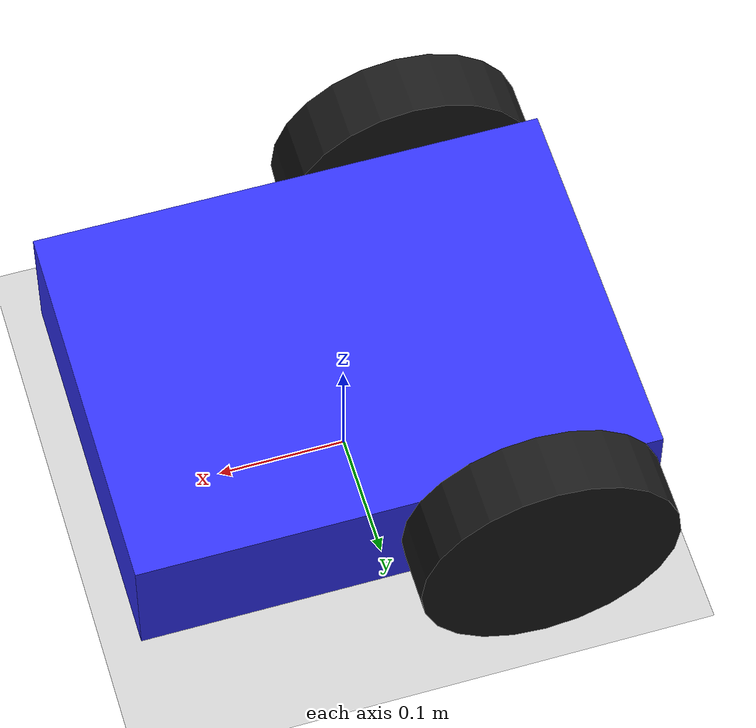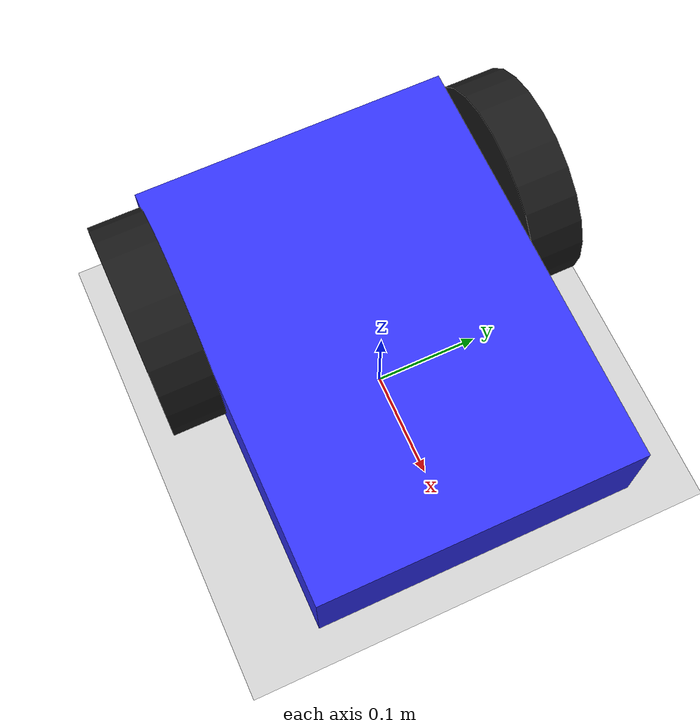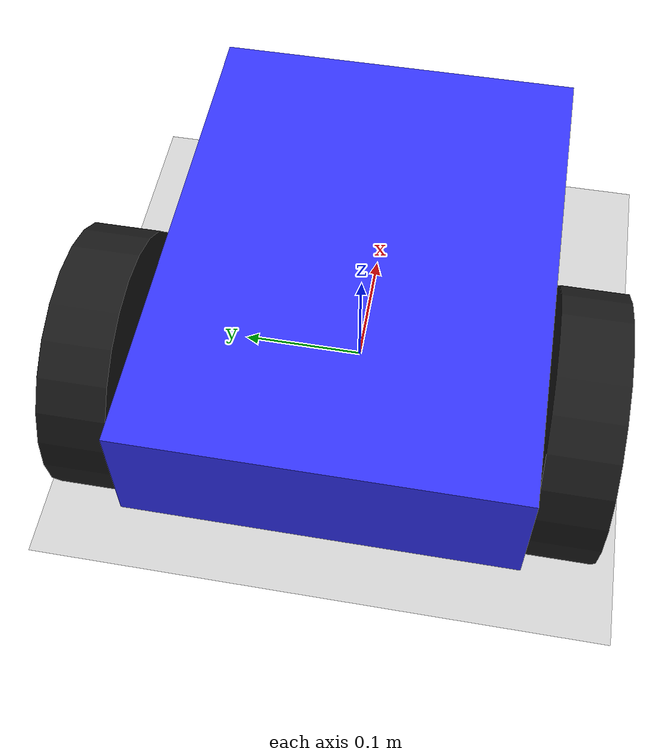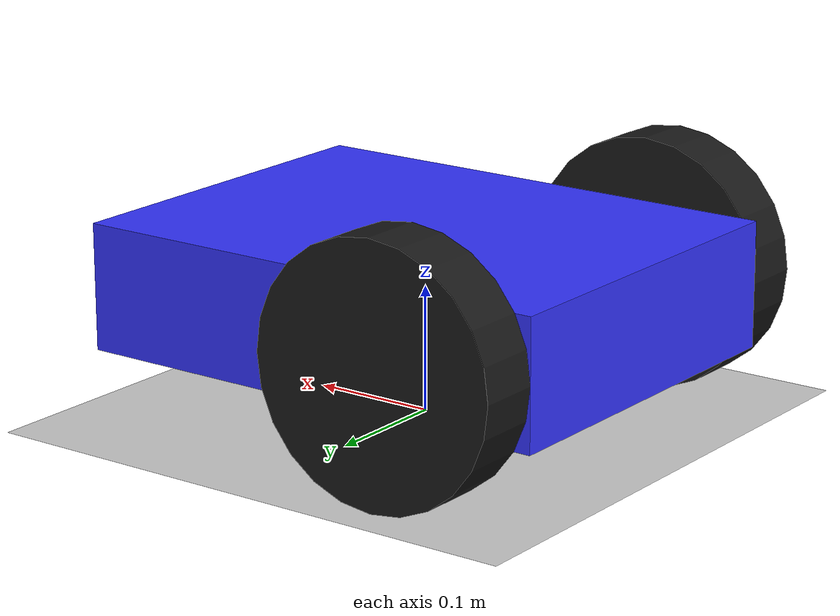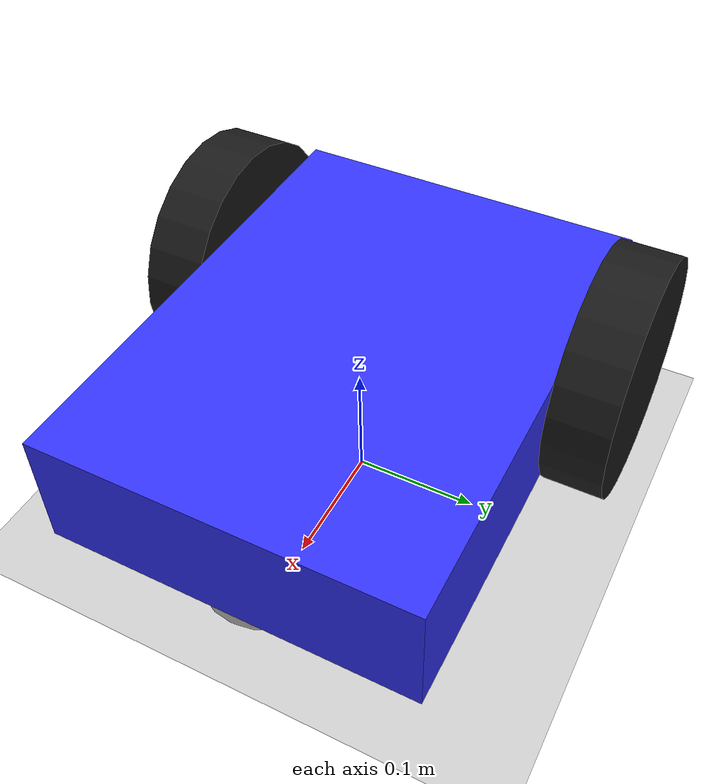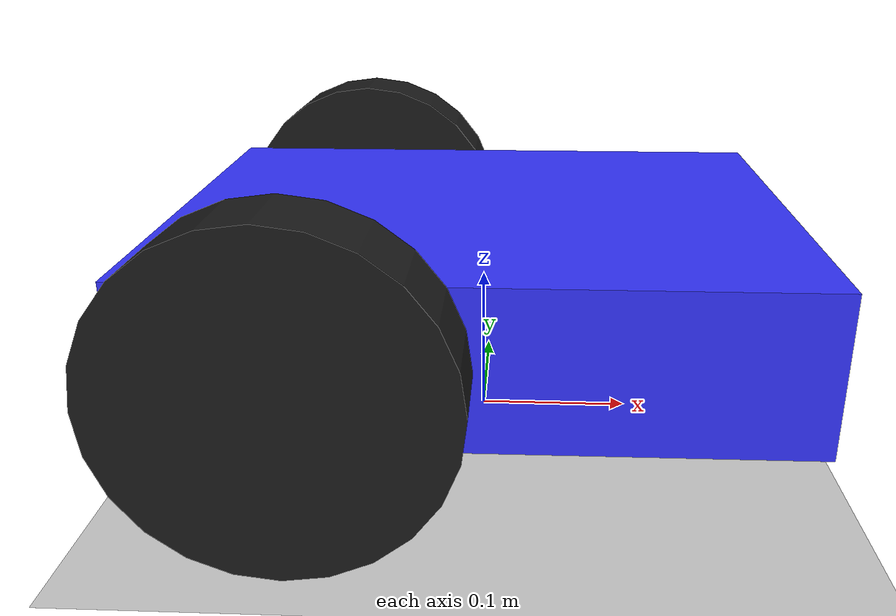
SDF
<?xml version="1.0" ?>
<sdf version="1.8">
  <world name="diff_drive_world">

    <physics name="1ms" type="ode">
      <max_step_size>0.001</max_step_size>
      <real_time_factor>1.0</real_time_factor>
    </physics>

    <plugin filename="gz-sim-physics-system" name="gz::sim::systems::Physics">
    </plugin>
    <plugin filename="gz-sim-user-commands-system" name="gz::sim::systems::UserCommands">
    </plugin>
    <plugin filename="gz-sim-scene-broadcaster-system" name="gz::sim::systems::SceneBroadcaster">
    </plugin>

    <light type="directional" name="sun">
      <cast_shadows>true</cast_shadows>
      <pose>0 0 10 0 0 0</pose>
      <diffuse>0.8 0.8 0.8 1</diffuse>
      <specular>0.2 0.2 0.2 1</specular>
      <attenuation>
        <range>1000</range>
        <constant>0.9</constant>
        <linear>0.01</linear>
        <quadratic>0.001</quadratic>
      </attenuation>
      <direction>-0.5 0.1 -0.9</direction>
    </light>

    <model name="ground_plane">
      <static>true</static>
      <link name="link">
        <collision name="collision">
          <geometry>
            <plane>
              <normal>0 0 1</normal>
              <size>100 100</size>
            </plane>
          </geometry>
          <surface>
            <friction>
              <ode>
                <mu>1.0</mu>
                <mu2>1.0</mu2>
              </ode>
            </friction>
          </surface>
        </collision>
        <visual name="visual">
          <geometry>
            <plane>
              <normal>0 0 1</normal>
              <size>100 100</size>
            </plane>
          </geometry>
          <material>
            <ambient>0.8 0.8 0.8 1</ambient>
            <diffuse>0.8 0.8 0.8 1</diffuse>
            <specular>0.8 0.8 0.8 1</specular>
          </material>
        </visual>
      </link>
    </model>

    <model name="diff_drive_robot">
      <pose>0 0 0.1 0 0 0</pose>
      <static>false</static>

      <link name="chassis">
        <pose>0 0 0 0 0 0</pose>
        <inertial>
          <mass>5.0</mass>
          <inertia>
            <ixx>0.0625</ixx>
            <ixy>0</ixy>
            <ixz>0</ixz>
            <iyy>0.125</iyy>
            <iyz>0</iyz>
            <izz>0.175</izz>
          </inertia>
        </inertial>
        <visual name="visual">
          <geometry>
            <box>
              <size>0.4 0.3 0.1</size>
            </box>
          </geometry>
          <material>
            <ambient>0.2 0.2 1 1</ambient>
            <diffuse>0.2 0.2 1 1</diffuse>
          </material>
        </visual>
        <collision name="collision">
          <geometry>
            <box>
              <size>0.4 0.3 0.1</size>
            </box>
          </geometry>
        </collision>
      </link>

      <link name="left_wheel">
        <pose>-0.1 0.175 0 -1.5707963 0 0</pose>
        <inertial>
          <mass>0.5</mass>
          <inertia>
            <ixx>0.001</ixx>
            <ixy>0</ixy>
            <ixz>0</ixz>
            <iyy>0.001</iyy>
            <iyz>0</iyz>
            <izz>0.0015</izz>
          </inertia>
        </inertial>
        <visual name="visual">
          <geometry>
            <cylinder>
              <radius>0.1</radius>
              <length>0.05</length>
            </cylinder>
          </geometry>
          <material>
            <ambient>0.1 0.1 0.1 1</ambient>
            <diffuse>0.1 0.1 0.1 1</diffuse>
          </material>
        </visual>
        <collision name="collision">
          <geometry>
            <cylinder>
              <radius>0.1</radius>
              <length>0.05</length>
            </cylinder>
          </geometry>
          <surface>
            <friction>
              <ode>
                <mu>1.5</mu>
                <mu2>1.5</mu2>
              </ode>
            </friction>
          </surface>
        </collision>
      </link>

      <link name="right_wheel">
        <pose>-0.1 -0.175 0 -1.5707963 0 0</pose>
        <inertial>
          <mass>0.5</mass>
          <inertia>
            <ixx>0.001</ixx>
            <ixy>0</ixy>
            <ixz>0</ixz>
            <iyy>0.001</iyy>
            <iyz>0</iyz>
            <izz>0.0015</izz>
          </inertia>
        </inertial>
        <visual name="visual">
          <geometry>
            <cylinder>
              <radius>0.1</radius>
              <length>0.05</length>
            </cylinder>
          </geometry>
          <material>
            <ambient>0.1 0.1 0.1 1</ambient>
            <diffuse>0.1 0.1 0.1 1</diffuse>
          </material>
        </visual>
        <collision name="collision">
          <geometry>
            <cylinder>
              <radius>0.1</radius>
              <length>0.05</length>
            </cylinder>
          </geometry>
          <surface>
            <friction>
              <ode>
                <mu>1.5</mu>
                <mu2>1.5</mu2>
              </ode>
            </friction>
          </surface>
        </collision>
      </link>

      <link name="caster_wheel">
        <pose>0.15 0 -0.05 0 0 0</pose>
        <inertial>
          <mass>0.2</mass>
          <inertia>
            <ixx>0.0001</ixx>
            <ixy>0</ixy>
            <ixz>0</ixz>
            <iyy>0.0001</iyy>
            <iyz>0</iyz>
            <izz>0.0001</izz>
          </inertia>
        </inertial>
        <visual name="visual">
          <geometry>
            <sphere>
              <radius>0.05</radius>
            </sphere>
          </geometry>
        </visual>
        <collision name="collision">
          <geometry>
            <sphere>
              <radius>0.05</radius>
            </sphere>
          </geometry>
          <surface>
            <friction>
              <ode>
                <mu>0.01</mu>
                <mu2>0.01</mu2>
              </ode>
            </friction>
          </surface>
        </collision>
      </link>

      <joint name="left_wheel_joint" type="revolute">
        <parent>chassis</parent>
        <child>left_wheel</child>
        <axis>
          <xyz>0 0 1</xyz>
          <limit>
            <lower>-1.79769e+308</lower>
            <upper>1.79769e+308</upper>
          </limit>
        </axis>
      </joint>

      <joint name="right_wheel_joint" type="revolute">
        <parent>chassis</parent>
        <child>right_wheel</child>
        <axis>
          <xyz>0 0 1</xyz>
          <limit>
            <lower>-1.79769e+308</lower>
            <upper>1.79769e+308</upper>
          </limit>
        </axis>
      </joint>

      <joint name="caster_wheel_joint" type="ball">
        <parent>chassis</parent>
        <child>caster_wheel</child>
      </joint>

      <plugin filename="gz-sim-diff-drive-system" name="gz::sim::systems::DiffDrive">
        <left_joint>left_wheel_joint</left_joint>
        <right_joint>right_wheel_joint</right_joint>
        <wheel_separation>0.35</wheel_separation>
        <wheel_radius>0.1</wheel_radius>
        <odom_publish_frequency>20</odom_publish_frequency>
        <topic>/cmd_vel</topic>
        <odom_topic>/odom</odom_topic>
        <frame_id>odom</frame_id>
        <child_frame_id>chassis</child_frame_id>
      </plugin>

    </model>

  </world>
</sdf>
